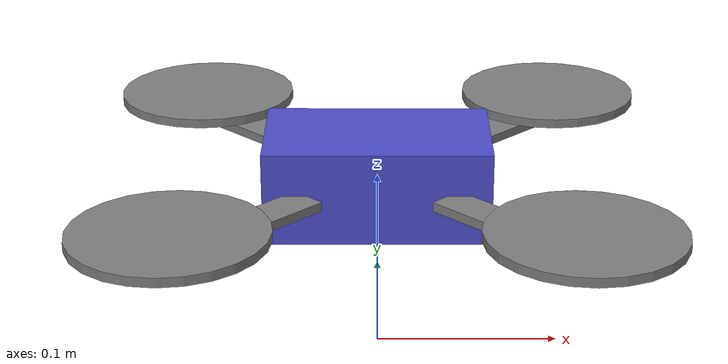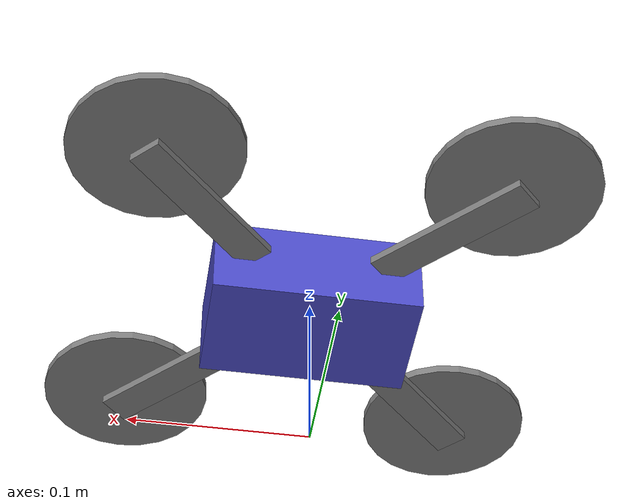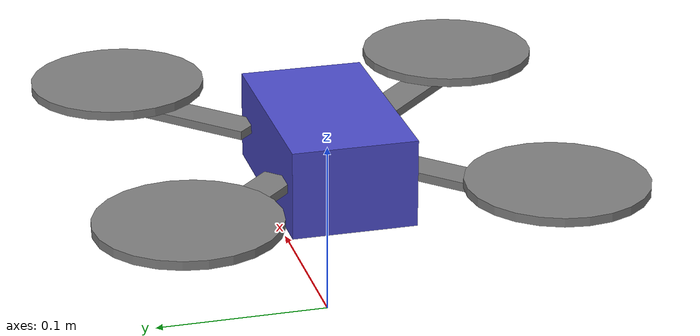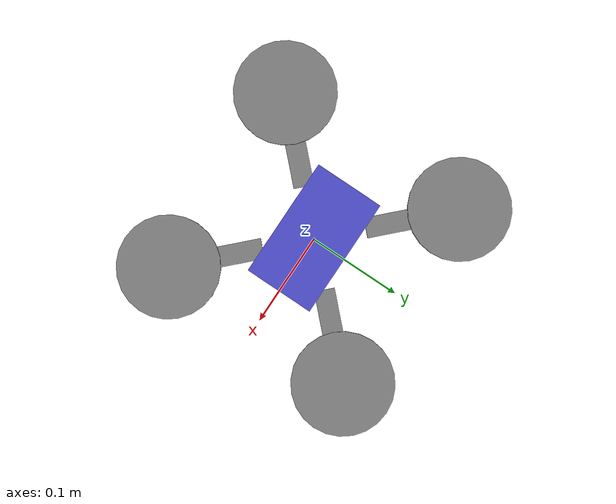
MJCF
<mujoco model="Quadrotor">

    <worldbody>

    <body name="quadrotor" pos="0 0 0.1">
    <geom name="core" type="box" pos="0 0 0" quat="1. 0. 0. 0" size="0.06 0.035 0.025" rgba="0.3 0.3 0.8 1" mass=".2"/>

    <geom name="a00" type="box" pos=".071 0.071 0.0" size="0.05 0.01 0.0025" quat=".924 0.0 0.0 0.383"
          rgba="0.5 0.5 0.5 1" mass=".025"/>
    <geom name="a10" type="box" pos=".071 -0.071 0.0" size="0.05 0.01 0.0025" quat=".383 0.0 0.0 0.924"
          rgba="0.5 0.5 0.5 1" mass=".025"/>
    <geom name="a20" type="box" pos="-0.071 -0.071 0.0" size="0.05 0.01 0.0025" quat="-.383 0.0 0.0 0.924"
          rgba="0.5 0.5 0.5 1" mass=".025"/>
    <geom name="a30" type="box" pos="-.071 0.071 0.0" size="0.05 0.01 0.0025" quat=".924 0.0 0.0 -0.383"
          rgba="0.5 0.5 0.5 1" mass=".025"/>

    <joint name="root" type="free" damping="0" armature="0" pos="0 0 0"/>

    <!-- Actuator sites to attach actuators  -->
    <site name="thrust" type="box" pos="0 0 0" size="0.06 0.035 0.025" quat="1.0 0.0 0.0 0." rgba="0.5 0.5 0.5 1"/>
    <site name="rateX" type="box" pos="0 0 0" quat="1. 0. 0. 0." size="0.06 0.035 0.025" rgba="0.5 0.5 0.5 1"/>
    <site name="rateY" type="box" pos="0 0 0" quat="1. 0. 0. 0." size="0.06 0.035 0.025" rgba="0.5 0.5 0.5 1"/>
    <site name="rateZ" type="box" pos="0 0 0" quat="1. 0. 0. 0." size="0.06 0.035 0.025" rgba="0.5 0.5 0.5 1"/>

    <!-- Thruster geometries for collisions since site's are excluded from collision checking -->
    <geom name="thruster0" type="cylinder" pos=" 0.1  0.1  0.01" size="0.05 0.0025" rgba="0.5 0.5 0.5 1" mass=".025"/>
    <geom name="thruster1" type="cylinder" pos=" 0.1 -0.1  0.01" size="0.05 0.0025" rgba="0.5 0.5 0.5 1" mass=".025"/>
    <geom name="thruster2" type="cylinder" pos="-0.1 -0.1  0.01" size="0.05 0.0025" rgba="0.5 0.5 0.5 1" mass=".025"/>
    <geom name="thruster3" type="cylinder" pos="-0.1  0.1  0.01" size="0.05 0.0025" rgba="0.5 0.5 0.5 1" mass=".025"/>
    <site name="thruster0" type="cylinder" pos=" 0.1  0.1  0.01" size="0.005 0.00025" rgba="0.5 0.5 0.5 1"/>
    <site name="thruster1" type="cylinder" pos=" 0.1 -0.1  0.01" size="0.005 0.00025" rgba="0.5 0.5 0.5 1"/>
    <site name="thruster2" type="cylinder" pos="-0.1 -0.1  0.01" size="0.005 0.00025" rgba="0.5 0.5 0.5 1"/>
    <site name="thruster3" type="cylinder" pos="-0.1  0.1  0.01" size="0.005 0.00025" rgba="0.5 0.5 0.5 1"/>

    <!-- Visualization of the coordinate frame -->
</body>
     </worldbody>
    </mujoco>
